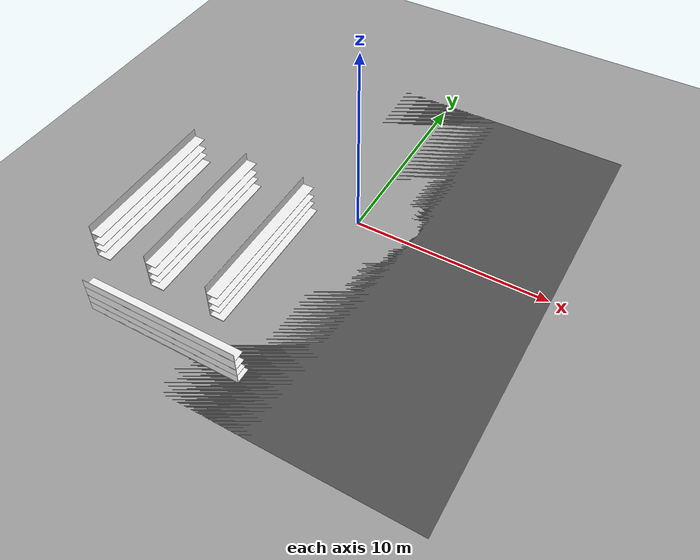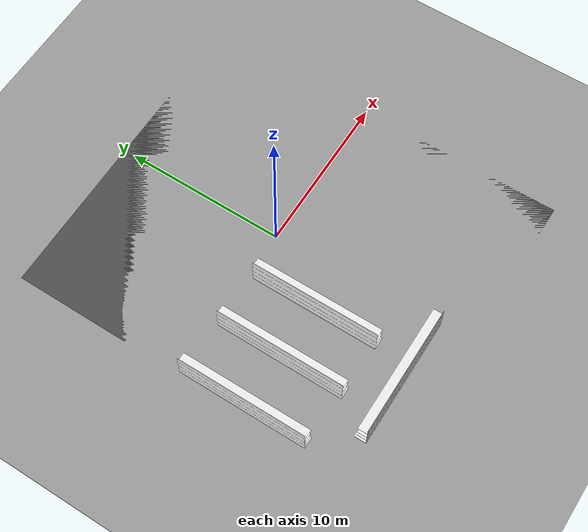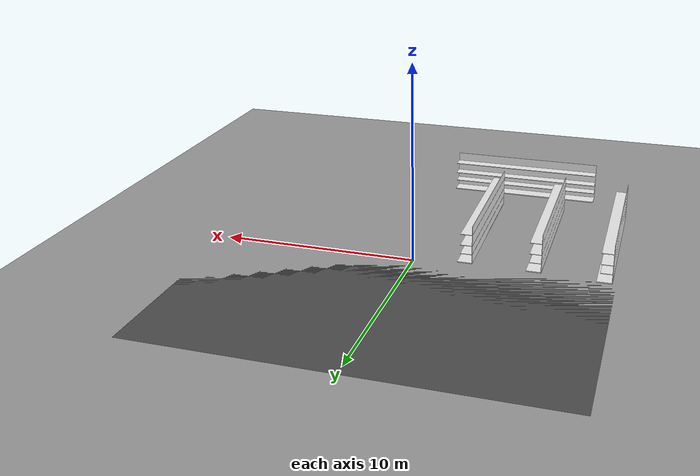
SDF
<sdf version="1.6">
 <world name="default">
  <model name="ground_plane">
   <static>1</static>
   <link name="link">
    <collision name="collision">
     <geometry><plane><normal>0 0 1</normal><size>100 100</size></plane></geometry>
     <surface>
      <contact><collide_bitmask>65535</collide_bitmask></contact>
      <friction><ode><mu>100</mu><mu2>50</mu2></ode></friction>
     </surface>
    </collision>
    <visual name="visual">
     <cast_shadows>0</cast_shadows>
     <geometry><plane><normal>0 0 1</normal><size>100 100</size></plane></geometry>
     <material>
      <script><uri>file://media/materials/scripts/gazebo.material</uri><name>Gazebo/Grey</name></script>
     </material>
    </visual>
   </link>
  </model>
  <model name="asphalt_plane">
   <static>1</static>
   <link name="link">
    <collision name="collision"><geometry><box><size>20 23.3157 0.1</size></box></geometry></collision>
    <visual name="visual">
     <cast_shadows>0</cast_shadows>
     <geometry><box><size>20 23.3157 0.1</size></box></geometry>
     <material>
      <script>
       <uri>model://asphalt_plane/materials/scripts</uri>
       <uri>model://asphalt_plane/materials/textures</uri>
       <name>vrc/asphalt</name>
      </script>
     </material>
    </visual>
   </link>
   <pose>0.082168 -0.989597 0 0 -0 0</pose>
  </model>
  <model name="ground_plane_0">
   <static>1</static>
   <link name="link">
    <collision name="collision">
     <geometry><plane><normal>0 0 1</normal><size>100 100</size></plane></geometry>
     <surface><friction><ode><mu>100</mu><mu2>50</mu2></ode></friction></surface>
    </collision>
    <visual name="visual">
     <cast_shadows>0</cast_shadows>
     <geometry><plane><normal>0 0 1</normal><size>100 100</size></plane></geometry>
     <material>
      <script><uri>file://media/materials/scripts/gazebo.material</uri><name>Gazebo/Grey</name></script>
     </material>
    </visual>
   </link>
   <pose>-0.042271 -4.04892 0 0 -0 0</pose>
  </model>
  <model name="LongShelfx4_clone_0">
   <link name="link_0">
    <inertial>
     <mass>0.38468</mass>
     <inertia>
      <ixx>0.0321196</ixx>
      <ixy>0</ixy>
      <ixz>0</ixz>
      <iyy>2.41752</iyy>
      <iyz>0</iyz>
      <izz>2.44951</izz>
     </inertia>
    </inertial>
    <pose>-4.95428 0.681381 -0.638013 0 -0 0</pose>
    <visual name="visual">
     <geometry><box><size>8 0.75 0.05</size></box></geometry>
     <material>
      <lighting>1</lighting>
      <script><uri>file://media/materials/scripts/gazebo.material</uri><name>Gazebo/White</name></script>
      <shader type="vertex"><normal_map>__default__</normal_map></shader>
      <ambient>0.3 0.3 0.3 1</ambient>
      <diffuse>0.7 0.7 0.7 1</diffuse>
      <specular>0.01 0.01 0.01 1</specular>
      <emissive>0 0 0 1</emissive>
     </material>
    </visual>
    <collision name="collision">
     <geometry><box><size>8 0.75 0.05</size></box></geometry>
     <surface>
      <friction>
       <ode><mu>1</mu><mu2>1</mu2><fdir1>0 0 0</fdir1><slip1>0</slip1><slip2>0</slip2></ode>
       <torsional>
        <coefficient>1</coefficient>
        <patch_radius>0</patch_radius>
        <surface_radius>0</surface_radius>
        <use_patch_radius>1</use_patch_radius>
        <ode><slip>0</slip></ode>
       </torsional>
      </friction>
      <bounce><restitution_coefficient>0</restitution_coefficient><threshold>1e+06</threshold></bounce>
      <contact>
       <collide_without_contact>0</collide_without_contact>
       <collide_without_contact_bitmask>1</collide_without_contact_bitmask>
       <collide_bitmask>1</collide_bitmask>
       <ode>
        <soft_cfm>0</soft_cfm>
        <soft_erp>0.2</soft_erp>
        <kp>1e+13</kp>
        <kd>1</kd>
        <max_vel>0.01</max_vel>
        <min_depth>0</min_depth>
       </ode>
       <bullet>
        <split_impulse>1</split_impulse>
        <split_impulse_penetration_threshold>-0.01</split_impulse_penetration_threshold>
        <soft_cfm>0</soft_cfm>
        <soft_erp>0.2</soft_erp>
        <kp>1e+13</kp>
        <kd>1</kd>
       </bullet>
      </contact>
     </surface>
    </collision>
   </link>
   <link name="link_1">
    <inertial>
     <mass>0.748605</mass>
     <inertia><ixx>0.445095</ixx><ixy>0</ixy><ixz>0</ixz><iyy>5.12268</iyy><iyz>0</iyz><izz>4.67771</izz></inertia>
    </inertial>
    <pose>-4.95468 0.318881 0.335328 0 -0 0</pose>
    <visual name="visual">
     <geometry><box><size>8 0.025 2</size></box></geometry>
     <material>
      <lighting>1</lighting>
      <script><uri>file://media/materials/scripts/gazebo.material</uri><name>Gazebo/White</name></script>
      <shader type="vertex"><normal_map>__default__</normal_map></shader>
      <ambient>0.3 0.3 0.3 1</ambient>
      <diffuse>0.7 0.7 0.7 1</diffuse>
      <specular>0.01 0.01 0.01 1</specular>
      <emissive>0 0 0 1</emissive>
     </material>
    </visual>
    <collision name="collision">
     <geometry><box><size>8 0.025 2</size></box></geometry>
     <surface>
      <friction>
       <ode><mu>1</mu><mu2>1</mu2><fdir1>0 0 0</fdir1><slip1>0</slip1><slip2>0</slip2></ode>
       <torsional>
        <coefficient>1</coefficient>
        <patch_radius>0</patch_radius>
        <surface_radius>0</surface_radius>
        <use_patch_radius>1</use_patch_radius>
        <ode><slip>0</slip></ode>
       </torsional>
      </friction>
      <bounce><restitution_coefficient>0</restitution_coefficient><threshold>1e+06</threshold></bounce>
      <contact>
       <collide_without_contact>0</collide_without_contact>
       <collide_without_contact_bitmask>1</collide_without_contact_bitmask>
       <collide_bitmask>1</collide_bitmask>
       <ode>
        <soft_cfm>0</soft_cfm>
        <soft_erp>0.2</soft_erp>
        <kp>1e+13</kp>
        <kd>1</kd>
        <max_vel>0.01</max_vel>
        <min_depth>0</min_depth>
       </ode>
       <bullet>
        <split_impulse>1</split_impulse>
        <split_impulse_penetration_threshold>-0.01</split_impulse_penetration_threshold>
        <soft_cfm>0</soft_cfm>
        <soft_erp>0.2</soft_erp>
        <kp>1e+13</kp>
        <kd>1</kd>
       </bullet>
      </contact>
     </surface>
    </collision>
   </link>
   <link name="link_2">
    <inertial>
     <mass>0.0597214</mass>
     <inertia>
      <ixx>0.00742007</ixx>
      <ixy>0</ixy>
      <ixz>0</ixz>
      <iyy>0.00498871</iyy>
      <iyz>0</iyz>
      <izz>0.0123849</izz>
     </inertia>
    </inertial>
    <pose>-4.95438 0.606368 0.295639 0 -0 0</pose>
    <visual name="visual">
     <geometry><box><size>8 0.6 0.025</size></box></geometry>
     <material>
      <lighting>1</lighting>
      <script><uri>file://media/materials/scripts/gazebo.material</uri><name>Gazebo/White</name></script>
      <shader type="vertex"><normal_map>__default__</normal_map></shader>
      <ambient>0.3 0.3 0.3 1</ambient>
      <diffuse>0.7 0.7 0.7 1</diffuse>
      <specular>0.01 0.01 0.01 1</specular>
      <emissive>0 0 0 1</emissive>
     </material>
    </visual>
    <collision name="collision">
     <geometry><box><size>8 0.600001 0.025</size></box></geometry>
     <surface>
      <friction>
       <ode><mu>1</mu><mu2>1</mu2><fdir1>0 0 0</fdir1><slip1>0</slip1><slip2>0</slip2></ode>
       <torsional>
        <coefficient>1</coefficient>
        <patch_radius>0</patch_radius>
        <surface_radius>0</surface_radius>
        <use_patch_radius>1</use_patch_radius>
        <ode><slip>0</slip></ode>
       </torsional>
      </friction>
      <bounce><restitution_coefficient>0</restitution_coefficient><threshold>1e+06</threshold></bounce>
      <contact>
       <collide_without_contact>0</collide_without_contact>
       <collide_without_contact_bitmask>1</collide_without_contact_bitmask>
       <collide_bitmask>1</collide_bitmask>
       <ode>
        <soft_cfm>0</soft_cfm>
        <soft_erp>0.2</soft_erp>
        <kp>1e+13</kp>
        <kd>1</kd>
        <max_vel>0.01</max_vel>
        <min_depth>0</min_depth>
       </ode>
       <bullet>
        <split_impulse>1</split_impulse>
        <split_impulse_penetration_threshold>-0.01</split_impulse_penetration_threshold>
        <soft_cfm>0</soft_cfm>
        <soft_erp>0.2</soft_erp>
        <kp>1e+13</kp>
        <kd>1</kd>
       </bullet>
      </contact>
     </surface>
    </collision>
   </link>
   <link name="link_2_clone">
    <inertial>
     <mass>0.0597214</mass>
     <inertia>
      <ixx>0.00742007</ixx>
      <ixy>0</ixy>
      <ixz>0</ixz>
      <iyy>0.00498871</iyy>
      <iyz>0</iyz>
      <izz>0.0123849</izz>
     </inertia>
    </inertial>
    <pose>-4.95438 0.606361 0.871858 0 -0 0</pose>
    <visual name="visual">
     <geometry><box><size>8 0.6 0.025</size></box></geometry>
     <material>
      <lighting>1</lighting>
      <script><uri>file://media/materials/scripts/gazebo.material</uri><name>Gazebo/White</name></script>
      <shader type="vertex"><normal_map>__default__</normal_map></shader>
      <ambient>0.3 0.3 0.3 1</ambient>
      <diffuse>0.7 0.7 0.7 1</diffuse>
      <specular>0.01 0.01 0.01 1</specular>
      <emissive>0 0 0 1</emissive>
     </material>
    </visual>
    <collision name="collision">
     <geometry><box><size>8 0.600001 0.025</size></box></geometry>
     <surface>
      <friction>
       <ode><mu>1</mu><mu2>1</mu2><fdir1>0 0 0</fdir1><slip1>0</slip1><slip2>0</slip2></ode>
       <torsional>
        <coefficient>1</coefficient>
        <patch_radius>0</patch_radius>
        <surface_radius>0</surface_radius>
        <use_patch_radius>1</use_patch_radius>
        <ode><slip>0</slip></ode>
       </torsional>
      </friction>
      <bounce><restitution_coefficient>0</restitution_coefficient><threshold>1e+06</threshold></bounce>
      <contact>
       <collide_without_contact>0</collide_without_contact>
       <collide_without_contact_bitmask>1</collide_without_contact_bitmask>
       <collide_bitmask>1</collide_bitmask>
       <ode>
        <soft_cfm>0</soft_cfm>
        <soft_erp>0.2</soft_erp>
        <kp>1e+13</kp>
        <kd>1</kd>
        <max_vel>0.01</max_vel>
        <min_depth>0</min_depth>
       </ode>
       <bullet>
        <split_impulse>1</split_impulse>
        <split_impulse_penetration_threshold>-0.01</split_impulse_penetration_threshold>
        <soft_cfm>0</soft_cfm>
        <soft_erp>0.2</soft_erp>
        <kp>1e+13</kp>
        <kd>1</kd>
       </bullet>
      </contact>
     </surface>
    </collision>
   </link>
   <link name="link_2_clone_0">
    <inertial>
     <mass>0.0597214</mass>
     <inertia>
      <ixx>0.00742007</ixx>
      <ixy>0</ixy>
      <ixz>0</ixz>
      <iyy>0.00498871</iyy>
      <iyz>0</iyz>
      <izz>0.0123849</izz>
     </inertia>
    </inertial>
    <pose>-4.95438 0.606375 -0.163574 0 -0 0</pose>
    <visual name="visual">
     <geometry><box><size>8 0.6 0.025</size></box></geometry>
     <material>
      <lighting>1</lighting>
      <script><uri>file://media/materials/scripts/gazebo.material</uri><name>Gazebo/White</name></script>
      <shader type="vertex"><normal_map>__default__</normal_map></shader>
      <ambient>0.3 0.3 0.3 1</ambient>
      <diffuse>0.7 0.7 0.7 1</diffuse>
      <specular>0.01 0.01 0.01 1</specular>
      <emissive>0 0 0 1</emissive>
     </material>
    </visual>
    <collision name="collision">
     <geometry><box><size>8 0.600001 0.025</size></box></geometry>
     <surface>
      <friction>
       <ode><mu>1</mu><mu2>1</mu2><fdir1>0 0 0</fdir1><slip1>0</slip1><slip2>0</slip2></ode>
       <torsional>
        <coefficient>1</coefficient>
        <patch_radius>0</patch_radius>
        <surface_radius>0</surface_radius>
        <use_patch_radius>1</use_patch_radius>
        <ode><slip>0</slip></ode>
       </torsional>
      </friction>
      <bounce><restitution_coefficient>0</restitution_coefficient><threshold>1e+06</threshold></bounce>
      <contact>
       <collide_without_contact>0</collide_without_contact>
       <collide_without_contact_bitmask>1</collide_without_contact_bitmask>
       <collide_bitmask>1</collide_bitmask>
       <ode>
        <soft_cfm>0</soft_cfm>
        <soft_erp>0.2</soft_erp>
        <kp>1e+13</kp>
        <kd>1</kd>
        <max_vel>0.01</max_vel>
        <min_depth>0</min_depth>
       </ode>
       <bullet>
        <split_impulse>1</split_impulse>
        <split_impulse_penetration_threshold>-0.01</split_impulse_penetration_threshold>
        <soft_cfm>0</soft_cfm>
        <soft_erp>0.2</soft_erp>
        <kp>1e+13</kp>
        <kd>1</kd>
       </bullet>
      </contact>
     </surface>
    </collision>
   </link>
   <joint name="link_1_JOINT_4" type="fixed">
    <parent>link_1</parent>
    <child>link_0</child>
    <physics>
     <ode><limit><cfm>0</cfm><erp>0.2</erp></limit><suspension><cfm>0</cfm><erp>0.2</erp></suspension></ode>
    </physics>
   </joint>
   <joint name="link_1_JOINT_5" type="fixed">
    <parent>link_1</parent>
    <child>link_2_clone_0</child>
    <physics>
     <ode><limit><cfm>0</cfm><erp>0.2</erp></limit><suspension><cfm>0</cfm><erp>0.2</erp></suspension></ode>
    </physics>
   </joint>
   <joint name="link_1_JOINT_6" type="fixed">
    <parent>link_1</parent>
    <child>link_2</child>
    <physics>
     <ode><limit><cfm>0</cfm><erp>0.2</erp></limit><suspension><cfm>0</cfm><erp>0.2</erp></suspension></ode>
    </physics>
   </joint>
   <joint name="link_1_JOINT_7" type="fixed">
    <parent>link_1</parent>
    <child>link_2_clone</child>
    <physics>
     <ode><limit><cfm>0</cfm><erp>0.2</erp></limit><suspension><cfm>0</cfm><erp>0.2</erp></suspension></ode>
    </physics>
   </joint>
   <static>0</static>
   <pose>-10.0293 -9.03175 0.715429 -0.002288 -0 -1.56844</pose>
  </model>
  <model name="LongShelfx4_clone_0_clone_clone">
   <link name="link_0">
    <inertial>
     <mass>0.38468</mass>
     <inertia>
      <ixx>0.0321196</ixx>
      <ixy>0</ixy>
      <ixz>0</ixz>
      <iyy>2.41752</iyy>
      <iyz>0</iyz>
      <izz>2.44951</izz>
     </inertia>
    </inertial>
    <pose>-4.95428 0.681381 -0.638013 0 -0 0</pose>
    <visual name="visual">
     <geometry><box><size>8 0.75 0.05</size></box></geometry>
     <material>
      <lighting>1</lighting>
      <script><uri>file://media/materials/scripts/gazebo.material</uri><name>Gazebo/White</name></script>
      <shader type="vertex"><normal_map>__default__</normal_map></shader>
      <ambient>0.3 0.3 0.3 1</ambient>
      <diffuse>0.7 0.7 0.7 1</diffuse>
      <specular>0.01 0.01 0.01 1</specular>
      <emissive>0 0 0 1</emissive>
     </material>
    </visual>
    <collision name="collision">
     <geometry><box><size>8 0.75 0.05</size></box></geometry>
     <surface>
      <friction>
       <ode><mu>1</mu><mu2>1</mu2><fdir1>0 0 0</fdir1><slip1>0</slip1><slip2>0</slip2></ode>
       <torsional>
        <coefficient>1</coefficient>
        <patch_radius>0</patch_radius>
        <surface_radius>0</surface_radius>
        <use_patch_radius>1</use_patch_radius>
        <ode><slip>0</slip></ode>
       </torsional>
      </friction>
      <bounce><restitution_coefficient>0</restitution_coefficient><threshold>1e+06</threshold></bounce>
      <contact>
       <collide_without_contact>0</collide_without_contact>
       <collide_without_contact_bitmask>1</collide_without_contact_bitmask>
       <collide_bitmask>1</collide_bitmask>
       <ode>
        <soft_cfm>0</soft_cfm>
        <soft_erp>0.2</soft_erp>
        <kp>1e+13</kp>
        <kd>1</kd>
        <max_vel>0.01</max_vel>
        <min_depth>0</min_depth>
       </ode>
       <bullet>
        <split_impulse>1</split_impulse>
        <split_impulse_penetration_threshold>-0.01</split_impulse_penetration_threshold>
        <soft_cfm>0</soft_cfm>
        <soft_erp>0.2</soft_erp>
        <kp>1e+13</kp>
        <kd>1</kd>
       </bullet>
      </contact>
     </surface>
    </collision>
   </link>
   <link name="link_1">
    <inertial>
     <mass>0.748605</mass>
     <inertia><ixx>0.445095</ixx><ixy>0</ixy><ixz>0</ixz><iyy>5.12268</iyy><iyz>0</iyz><izz>4.67771</izz></inertia>
    </inertial>
    <pose>-4.95468 0.318881 0.335328 0 -0 0</pose>
    <visual name="visual">
     <geometry><box><size>8 0.025 2</size></box></geometry>
     <material>
      <lighting>1</lighting>
      <script><uri>file://media/materials/scripts/gazebo.material</uri><name>Gazebo/White</name></script>
      <shader type="vertex"><normal_map>__default__</normal_map></shader>
      <ambient>0.3 0.3 0.3 1</ambient>
      <diffuse>0.7 0.7 0.7 1</diffuse>
      <specular>0.01 0.01 0.01 1</specular>
      <emissive>0 0 0 1</emissive>
     </material>
    </visual>
    <collision name="collision">
     <geometry><box><size>8 0.025 2</size></box></geometry>
     <surface>
      <friction>
       <ode><mu>1</mu><mu2>1</mu2><fdir1>0 0 0</fdir1><slip1>0</slip1><slip2>0</slip2></ode>
       <torsional>
        <coefficient>1</coefficient>
        <patch_radius>0</patch_radius>
        <surface_radius>0</surface_radius>
        <use_patch_radius>1</use_patch_radius>
        <ode><slip>0</slip></ode>
       </torsional>
      </friction>
      <bounce><restitution_coefficient>0</restitution_coefficient><threshold>1e+06</threshold></bounce>
      <contact>
       <collide_without_contact>0</collide_without_contact>
       <collide_without_contact_bitmask>1</collide_without_contact_bitmask>
       <collide_bitmask>1</collide_bitmask>
       <ode>
        <soft_cfm>0</soft_cfm>
        <soft_erp>0.2</soft_erp>
        <kp>1e+13</kp>
        <kd>1</kd>
        <max_vel>0.01</max_vel>
        <min_depth>0</min_depth>
       </ode>
       <bullet>
        <split_impulse>1</split_impulse>
        <split_impulse_penetration_threshold>-0.01</split_impulse_penetration_threshold>
        <soft_cfm>0</soft_cfm>
        <soft_erp>0.2</soft_erp>
        <kp>1e+13</kp>
        <kd>1</kd>
       </bullet>
      </contact>
     </surface>
    </collision>
   </link>
   <link name="link_2">
    <inertial>
     <mass>0.0597214</mass>
     <inertia>
      <ixx>0.00742007</ixx>
      <ixy>0</ixy>
      <ixz>0</ixz>
      <iyy>0.00498871</iyy>
      <iyz>0</iyz>
      <izz>0.0123849</izz>
     </inertia>
    </inertial>
    <pose>-4.95438 0.606368 0.295639 0 -0 0</pose>
    <visual name="visual">
     <geometry><box><size>8 0.6 0.025</size></box></geometry>
     <material>
      <lighting>1</lighting>
      <script><uri>file://media/materials/scripts/gazebo.material</uri><name>Gazebo/White</name></script>
      <shader type="vertex"><normal_map>__default__</normal_map></shader>
      <ambient>0.3 0.3 0.3 1</ambient>
      <diffuse>0.7 0.7 0.7 1</diffuse>
      <specular>0.01 0.01 0.01 1</specular>
      <emissive>0 0 0 1</emissive>
     </material>
    </visual>
    <collision name="collision">
     <geometry><box><size>8 0.600001 0.025</size></box></geometry>
     <surface>
      <friction>
       <ode><mu>1</mu><mu2>1</mu2><fdir1>0 0 0</fdir1><slip1>0</slip1><slip2>0</slip2></ode>
       <torsional>
        <coefficient>1</coefficient>
        <patch_radius>0</patch_radius>
        <surface_radius>0</surface_radius>
        <use_patch_radius>1</use_patch_radius>
        <ode><slip>0</slip></ode>
       </torsional>
      </friction>
      <bounce><restitution_coefficient>0</restitution_coefficient><threshold>1e+06</threshold></bounce>
      <contact>
       <collide_without_contact>0</collide_without_contact>
       <collide_without_contact_bitmask>1</collide_without_contact_bitmask>
       <collide_bitmask>1</collide_bitmask>
       <ode>
        <soft_cfm>0</soft_cfm>
        <soft_erp>0.2</soft_erp>
        <kp>1e+13</kp>
        <kd>1</kd>
        <max_vel>0.01</max_vel>
        <min_depth>0</min_depth>
       </ode>
       <bullet>
        <split_impulse>1</split_impulse>
        <split_impulse_penetration_threshold>-0.01</split_impulse_penetration_threshold>
        <soft_cfm>0</soft_cfm>
        <soft_erp>0.2</soft_erp>
        <kp>1e+13</kp>
        <kd>1</kd>
       </bullet>
      </contact>
     </surface>
    </collision>
   </link>
   <link name="link_2_clone">
    <inertial>
     <mass>0.0597214</mass>
     <inertia>
      <ixx>0.00742007</ixx>
      <ixy>0</ixy>
      <ixz>0</ixz>
      <iyy>0.00498871</iyy>
      <iyz>0</iyz>
      <izz>0.0123849</izz>
     </inertia>
    </inertial>
    <pose>-4.95438 0.606361 0.871858 0 -0 0</pose>
    <visual name="visual">
     <geometry><box><size>8 0.6 0.025</size></box></geometry>
     <material>
      <lighting>1</lighting>
      <script><uri>file://media/materials/scripts/gazebo.material</uri><name>Gazebo/White</name></script>
      <shader type="vertex"><normal_map>__default__</normal_map></shader>
      <ambient>0.3 0.3 0.3 1</ambient>
      <diffuse>0.7 0.7 0.7 1</diffuse>
      <specular>0.01 0.01 0.01 1</specular>
      <emissive>0 0 0 1</emissive>
     </material>
    </visual>
    <collision name="collision">
     <geometry><box><size>8 0.600001 0.025</size></box></geometry>
     <surface>
      <friction>
       <ode><mu>1</mu><mu2>1</mu2><fdir1>0 0 0</fdir1><slip1>0</slip1><slip2>0</slip2></ode>
       <torsional>
        <coefficient>1</coefficient>
        <patch_radius>0</patch_radius>
        <surface_radius>0</surface_radius>
        <use_patch_radius>1</use_patch_radius>
        <ode><slip>0</slip></ode>
       </torsional>
      </friction>
      <bounce><restitution_coefficient>0</restitution_coefficient><threshold>1e+06</threshold></bounce>
      <contact>
       <collide_without_contact>0</collide_without_contact>
       <collide_without_contact_bitmask>1</collide_without_contact_bitmask>
       <collide_bitmask>1</collide_bitmask>
       <ode>
        <soft_cfm>0</soft_cfm>
        <soft_erp>0.2</soft_erp>
        <kp>1e+13</kp>
        <kd>1</kd>
        <max_vel>0.01</max_vel>
        <min_depth>0</min_depth>
       </ode>
       <bullet>
        <split_impulse>1</split_impulse>
        <split_impulse_penetration_threshold>-0.01</split_impulse_penetration_threshold>
        <soft_cfm>0</soft_cfm>
        <soft_erp>0.2</soft_erp>
        <kp>1e+13</kp>
        <kd>1</kd>
       </bullet>
      </contact>
     </surface>
    </collision>
   </link>
   <link name="link_2_clone_0">
    <inertial>
     <mass>0.0597214</mass>
     <inertia>
      <ixx>0.00742007</ixx>
      <ixy>0</ixy>
      <ixz>0</ixz>
      <iyy>0.00498871</iyy>
      <iyz>0</iyz>
      <izz>0.0123849</izz>
     </inertia>
    </inertial>
    <pose>-4.95438 0.606375 -0.163574 0 -0 0</pose>
    <visual name="visual">
     <geometry><box><size>8 0.6 0.025</size></box></geometry>
     <material>
      <lighting>1</lighting>
      <script><uri>file://media/materials/scripts/gazebo.material</uri><name>Gazebo/White</name></script>
      <shader type="vertex"><normal_map>__default__</normal_map></shader>
      <ambient>0.3 0.3 0.3 1</ambient>
      <diffuse>0.7 0.7 0.7 1</diffuse>
      <specular>0.01 0.01 0.01 1</specular>
      <emissive>0 0 0 1</emissive>
     </material>
    </visual>
    <collision name="collision">
     <geometry><box><size>8 0.600001 0.025</size></box></geometry>
     <surface>
      <friction>
       <ode><mu>1</mu><mu2>1</mu2><fdir1>0 0 0</fdir1><slip1>0</slip1><slip2>0</slip2></ode>
       <torsional>
        <coefficient>1</coefficient>
        <patch_radius>0</patch_radius>
        <surface_radius>0</surface_radius>
        <use_patch_radius>1</use_patch_radius>
        <ode><slip>0</slip></ode>
       </torsional>
      </friction>
      <bounce><restitution_coefficient>0</restitution_coefficient><threshold>1e+06</threshold></bounce>
      <contact>
       <collide_without_contact>0</collide_without_contact>
       <collide_without_contact_bitmask>1</collide_without_contact_bitmask>
       <collide_bitmask>1</collide_bitmask>
       <ode>
        <soft_cfm>0</soft_cfm>
        <soft_erp>0.2</soft_erp>
        <kp>1e+13</kp>
        <kd>1</kd>
        <max_vel>0.01</max_vel>
        <min_depth>0</min_depth>
       </ode>
       <bullet>
        <split_impulse>1</split_impulse>
        <split_impulse_penetration_threshold>-0.01</split_impulse_penetration_threshold>
        <soft_cfm>0</soft_cfm>
        <soft_erp>0.2</soft_erp>
        <kp>1e+13</kp>
        <kd>1</kd>
       </bullet>
      </contact>
     </surface>
    </collision>
   </link>
   <joint name="link_1_JOINT_4" type="fixed">
    <parent>link_1</parent>
    <child>link_0</child>
    <physics>
     <ode><limit><cfm>0</cfm><erp>0.2</erp></limit><suspension><cfm>0</cfm><erp>0.2</erp></suspension></ode>
    </physics>
   </joint>
   <joint name="link_1_JOINT_5" type="fixed">
    <parent>link_1</parent>
    <child>link_2_clone_0</child>
    <physics>
     <ode><limit><cfm>0</cfm><erp>0.2</erp></limit><suspension><cfm>0</cfm><erp>0.2</erp></suspension></ode>
    </physics>
   </joint>
   <joint name="link_1_JOINT_6" type="fixed">
    <parent>link_1</parent>
    <child>link_2</child>
    <physics>
     <ode><limit><cfm>0</cfm><erp>0.2</erp></limit><suspension><cfm>0</cfm><erp>0.2</erp></suspension></ode>
    </physics>
   </joint>
   <joint name="link_1_JOINT_7" type="fixed">
    <parent>link_1</parent>
    <child>link_2_clone</child>
    <physics>
     <ode><limit><cfm>0</cfm><erp>0.2</erp></limit><suspension><cfm>0</cfm><erp>0.2</erp></suspension></ode>
    </physics>
   </joint>
   <static>0</static>
   <pose>-6.65102 -9.23059 0.715417 -0.002288 1e-06 -1.57046</pose>
  </model>
  <model name="LongShelfx4_clone_0_clone_clone_0">
   <link name="link_0">
    <inertial>
     <mass>0.38468</mass>
     <inertia>
      <ixx>0.0321196</ixx>
      <ixy>0</ixy>
      <ixz>0</ixz>
      <iyy>2.41752</iyy>
      <iyz>0</iyz>
      <izz>2.44951</izz>
     </inertia>
    </inertial>
    <pose>-4.95428 0.681381 -0.638013 0 -0 0</pose>
    <visual name="visual">
     <geometry><box><size>8 0.75 0.05</size></box></geometry>
     <material>
      <lighting>1</lighting>
      <script><uri>file://media/materials/scripts/gazebo.material</uri><name>Gazebo/White</name></script>
      <shader type="vertex"><normal_map>__default__</normal_map></shader>
      <ambient>0.3 0.3 0.3 1</ambient>
      <diffuse>0.7 0.7 0.7 1</diffuse>
      <specular>0.01 0.01 0.01 1</specular>
      <emissive>0 0 0 1</emissive>
     </material>
    </visual>
    <collision name="collision">
     <geometry><box><size>8 0.75 0.05</size></box></geometry>
     <surface>
      <friction>
       <ode><mu>1</mu><mu2>1</mu2><fdir1>0 0 0</fdir1><slip1>0</slip1><slip2>0</slip2></ode>
       <torsional>
        <coefficient>1</coefficient>
        <patch_radius>0</patch_radius>
        <surface_radius>0</surface_radius>
        <use_patch_radius>1</use_patch_radius>
        <ode><slip>0</slip></ode>
       </torsional>
      </friction>
      <bounce><restitution_coefficient>0</restitution_coefficient><threshold>1e+06</threshold></bounce>
      <contact>
       <collide_without_contact>0</collide_without_contact>
       <collide_without_contact_bitmask>1</collide_without_contact_bitmask>
       <collide_bitmask>1</collide_bitmask>
       <ode>
        <soft_cfm>0</soft_cfm>
        <soft_erp>0.2</soft_erp>
        <kp>1e+13</kp>
        <kd>1</kd>
        <max_vel>0.01</max_vel>
        <min_depth>0</min_depth>
       </ode>
       <bullet>
        <split_impulse>1</split_impulse>
        <split_impulse_penetration_threshold>-0.01</split_impulse_penetration_threshold>
        <soft_cfm>0</soft_cfm>
        <soft_erp>0.2</soft_erp>
        <kp>1e+13</kp>
        <kd>1</kd>
       </bullet>
      </contact>
     </surface>
    </collision>
   </link>
   <link name="link_1">
    <inertial>
     <mass>0.748605</mass>
     <inertia><ixx>0.445095</ixx><ixy>0</ixy><ixz>0</ixz><iyy>5.12268</iyy><iyz>0</iyz><izz>4.67771</izz></inertia>
    </inertial>
    <pose>-4.95468 0.318881 0.335328 0 -0 0</pose>
    <visual name="visual">
     <geometry><box><size>8 0.025 2</size></box></geometry>
     <material>
      <lighting>1</lighting>
      <script><uri>file://media/materials/scripts/gazebo.material</uri><name>Gazebo/White</name></script>
      <shader type="vertex"><normal_map>__default__</normal_map></shader>
      <ambient>0.3 0.3 0.3 1</ambient>
      <diffuse>0.7 0.7 0.7 1</diffuse>
      <specular>0.01 0.01 0.01 1</specular>
      <emissive>0 0 0 1</emissive>
     </material>
    </visual>
    <collision name="collision">
     <geometry><box><size>8 0.025 2</size></box></geometry>
     <surface>
      <friction>
       <ode><mu>1</mu><mu2>1</mu2><fdir1>0 0 0</fdir1><slip1>0</slip1><slip2>0</slip2></ode>
       <torsional>
        <coefficient>1</coefficient>
        <patch_radius>0</patch_radius>
        <surface_radius>0</surface_radius>
        <use_patch_radius>1</use_patch_radius>
        <ode><slip>0</slip></ode>
       </torsional>
      </friction>
      <bounce><restitution_coefficient>0</restitution_coefficient><threshold>1e+06</threshold></bounce>
      <contact>
       <collide_without_contact>0</collide_without_contact>
       <collide_without_contact_bitmask>1</collide_without_contact_bitmask>
       <collide_bitmask>1</collide_bitmask>
       <ode>
        <soft_cfm>0</soft_cfm>
        <soft_erp>0.2</soft_erp>
        <kp>1e+13</kp>
        <kd>1</kd>
        <max_vel>0.01</max_vel>
        <min_depth>0</min_depth>
       </ode>
       <bullet>
        <split_impulse>1</split_impulse>
        <split_impulse_penetration_threshold>-0.01</split_impulse_penetration_threshold>
        <soft_cfm>0</soft_cfm>
        <soft_erp>0.2</soft_erp>
        <kp>1e+13</kp>
        <kd>1</kd>
       </bullet>
      </contact>
     </surface>
    </collision>
   </link>
   <link name="link_2">
    <inertial>
     <mass>0.0597214</mass>
     <inertia>
      <ixx>0.00742007</ixx>
      <ixy>0</ixy>
      <ixz>0</ixz>
      <iyy>0.00498871</iyy>
      <iyz>0</iyz>
      <izz>0.0123849</izz>
     </inertia>
    </inertial>
    <pose>-4.95438 0.606368 0.295639 0 -0 0</pose>
    <visual name="visual">
     <geometry><box><size>8 0.6 0.025</size></box></geometry>
     <material>
      <lighting>1</lighting>
      <script><uri>file://media/materials/scripts/gazebo.material</uri><name>Gazebo/White</name></script>
      <shader type="vertex"><normal_map>__default__</normal_map></shader>
      <ambient>0.3 0.3 0.3 1</ambient>
      <diffuse>0.7 0.7 0.7 1</diffuse>
      <specular>0.01 0.01 0.01 1</specular>
      <emissive>0 0 0 1</emissive>
     </material>
    </visual>
    <collision name="collision">
     <geometry><box><size>8 0.600001 0.025</size></box></geometry>
     <surface>
      <friction>
       <ode><mu>1</mu><mu2>1</mu2><fdir1>0 0 0</fdir1><slip1>0</slip1><slip2>0</slip2></ode>
       <torsional>
        <coefficient>1</coefficient>
        <patch_radius>0</patch_radius>
        <surface_radius>0</surface_radius>
        <use_patch_radius>1</use_patch_radius>
        <ode><slip>0</slip></ode>
       </torsional>
      </friction>
      <bounce><restitution_coefficient>0</restitution_coefficient><threshold>1e+06</threshold></bounce>
      <contact>
       <collide_without_contact>0</collide_without_contact>
       <collide_without_contact_bitmask>1</collide_without_contact_bitmask>
       <collide_bitmask>1</collide_bitmask>
       <ode>
        <soft_cfm>0</soft_cfm>
        <soft_erp>0.2</soft_erp>
        <kp>1e+13</kp>
        <kd>1</kd>
        <max_vel>0.01</max_vel>
        <min_depth>0</min_depth>
       </ode>
       <bullet>
        <split_impulse>1</split_impulse>
        <split_impulse_penetration_threshold>-0.01</split_impulse_penetration_threshold>
        <soft_cfm>0</soft_cfm>
        <soft_erp>0.2</soft_erp>
        <kp>1e+13</kp>
        <kd>1</kd>
       </bullet>
      </contact>
     </surface>
    </collision>
   </link>
   <link name="link_2_clone">
    <inertial>
     <mass>0.0597214</mass>
     <inertia>
      <ixx>0.00742007</ixx>
      <ixy>0</ixy>
      <ixz>0</ixz>
      <iyy>0.00498871</iyy>
      <iyz>0</iyz>
      <izz>0.0123849</izz>
     </inertia>
    </inertial>
    <pose>-4.95438 0.606361 0.871858 0 -0 0</pose>
    <visual name="visual">
     <geometry><box><size>8 0.6 0.025</size></box></geometry>
     <material>
      <lighting>1</lighting>
      <script><uri>file://media/materials/scripts/gazebo.material</uri><name>Gazebo/White</name></script>
      <shader type="vertex"><normal_map>__default__</normal_map></shader>
      <ambient>0.3 0.3 0.3 1</ambient>
      <diffuse>0.7 0.7 0.7 1</diffuse>
      <specular>0.01 0.01 0.01 1</specular>
      <emissive>0 0 0 1</emissive>
     </material>
    </visual>
    <collision name="collision">
     <geometry><box><size>8 0.600001 0.025</size></box></geometry>
     <surface>
      <friction>
       <ode><mu>1</mu><mu2>1</mu2><fdir1>0 0 0</fdir1><slip1>0</slip1><slip2>0</slip2></ode>
       <torsional>
        <coefficient>1</coefficient>
        <patch_radius>0</patch_radius>
        <surface_radius>0</surface_radius>
        <use_patch_radius>1</use_patch_radius>
        <ode><slip>0</slip></ode>
       </torsional>
      </friction>
      <bounce><restitution_coefficient>0</restitution_coefficient><threshold>1e+06</threshold></bounce>
      <contact>
       <collide_without_contact>0</collide_without_contact>
       <collide_without_contact_bitmask>1</collide_without_contact_bitmask>
       <collide_bitmask>1</collide_bitmask>
       <ode>
        <soft_cfm>0</soft_cfm>
        <soft_erp>0.2</soft_erp>
        <kp>1e+13</kp>
        <kd>1</kd>
        <max_vel>0.01</max_vel>
        <min_depth>0</min_depth>
       </ode>
       <bullet>
        <split_impulse>1</split_impulse>
        <split_impulse_penetration_threshold>-0.01</split_impulse_penetration_threshold>
        <soft_cfm>0</soft_cfm>
        <soft_erp>0.2</soft_erp>
        <kp>1e+13</kp>
        <kd>1</kd>
       </bullet>
      </contact>
     </surface>
    </collision>
   </link>
   <link name="link_2_clone_0">
    <inertial>
     <mass>0.0597214</mass>
     <inertia>
      <ixx>0.00742007</ixx>
      <ixy>0</ixy>
      <ixz>0</ixz>
      <iyy>0.00498871</iyy>
      <iyz>0</iyz>
      <izz>0.0123849</izz>
     </inertia>
    </inertial>
    <pose>-4.95438 0.606375 -0.163574 0 -0 0</pose>
    <visual name="visual">
     <geometry><box><size>8 0.6 0.025</size></box></geometry>
     <material>
      <lighting>1</lighting>
      <script><uri>file://media/materials/scripts/gazebo.material</uri><name>Gazebo/White</name></script>
      <shader type="vertex"><normal_map>__default__</normal_map></shader>
      <ambient>0.3 0.3 0.3 1</ambient>
      <diffuse>0.7 0.7 0.7 1</diffuse>
      <specular>0.01 0.01 0.01 1</specular>
      <emissive>0 0 0 1</emissive>
     </material>
    </visual>
    <collision name="collision">
     <geometry><box><size>8 0.600001 0.025</size></box></geometry>
     <surface>
      <friction>
       <ode><mu>1</mu><mu2>1</mu2><fdir1>0 0 0</fdir1><slip1>0</slip1><slip2>0</slip2></ode>
       <torsional>
        <coefficient>1</coefficient>
        <patch_radius>0</patch_radius>
        <surface_radius>0</surface_radius>
        <use_patch_radius>1</use_patch_radius>
        <ode><slip>0</slip></ode>
       </torsional>
      </friction>
      <bounce><restitution_coefficient>0</restitution_coefficient><threshold>1e+06</threshold></bounce>
      <contact>
       <collide_without_contact>0</collide_without_contact>
       <collide_without_contact_bitmask>1</collide_without_contact_bitmask>
       <collide_bitmask>1</collide_bitmask>
       <ode>
        <soft_cfm>0</soft_cfm>
        <soft_erp>0.2</soft_erp>
        <kp>1e+13</kp>
        <kd>1</kd>
        <max_vel>0.01</max_vel>
        <min_depth>0</min_depth>
       </ode>
       <bullet>
        <split_impulse>1</split_impulse>
        <split_impulse_penetration_threshold>-0.01</split_impulse_penetration_threshold>
        <soft_cfm>0</soft_cfm>
        <soft_erp>0.2</soft_erp>
        <kp>1e+13</kp>
        <kd>1</kd>
       </bullet>
      </contact>
     </surface>
    </collision>
   </link>
   <joint name="link_1_JOINT_4" type="fixed">
    <parent>link_1</parent>
    <child>link_0</child>
    <physics>
     <ode><limit><cfm>0</cfm><erp>0.2</erp></limit><suspension><cfm>0</cfm><erp>0.2</erp></suspension></ode>
    </physics>
   </joint>
   <joint name="link_1_JOINT_5" type="fixed">
    <parent>link_1</parent>
    <child>link_2_clone_0</child>
    <physics>
     <ode><limit><cfm>0</cfm><erp>0.2</erp></limit><suspension><cfm>0</cfm><erp>0.2</erp></suspension></ode>
    </physics>
   </joint>
   <joint name="link_1_JOINT_6" type="fixed">
    <parent>link_1</parent>
    <child>link_2</child>
    <physics>
     <ode><limit><cfm>0</cfm><erp>0.2</erp></limit><suspension><cfm>0</cfm><erp>0.2</erp></suspension></ode>
    </physics>
   </joint>
   <joint name="link_1_JOINT_7" type="fixed">
    <parent>link_1</parent>
    <child>link_2_clone</child>
    <physics>
     <ode><limit><cfm>0</cfm><erp>0.2</erp></limit><suspension><cfm>0</cfm><erp>0.2</erp></suspension></ode>
    </physics>
   </joint>
   <static>0</static>
   <pose>-3.21582 -9.2931 0.715428 -0.002288 -0 -1.56937</pose>
  </model>
  <model name="LongShelfx4_clone_1">
   <link name="link_0">
    <inertial>
     <mass>0.38468</mass>
     <inertia>
      <ixx>0.0321196</ixx>
      <ixy>0</ixy>
      <ixz>0</ixz>
      <iyy>2.41752</iyy>
      <iyz>0</iyz>
      <izz>2.44951</izz>
     </inertia>
    </inertial>
    <pose>-4.95428 0.681381 -0.638013 0 -0 0</pose>
    <visual name="visual">
     <geometry><box><size>8 0.75 0.05</size></box></geometry>
     <material>
      <lighting>1</lighting>
      <script><uri>file://media/materials/scripts/gazebo.material</uri><name>Gazebo/White</name></script>
      <shader type="vertex"><normal_map>__default__</normal_map></shader>
      <ambient>0.3 0.3 0.3 1</ambient>
      <diffuse>0.7 0.7 0.7 1</diffuse>
      <specular>0.01 0.01 0.01 1</specular>
      <emissive>0 0 0 1</emissive>
     </material>
    </visual>
    <collision name="collision">
     <geometry><box><size>8 0.75 0.05</size></box></geometry>
     <surface>
      <friction>
       <ode><mu>1</mu><mu2>1</mu2><fdir1>0 0 0</fdir1><slip1>0</slip1><slip2>0</slip2></ode>
       <torsional>
        <coefficient>1</coefficient>
        <patch_radius>0</patch_radius>
        <surface_radius>0</surface_radius>
        <use_patch_radius>1</use_patch_radius>
        <ode><slip>0</slip></ode>
       </torsional>
      </friction>
      <bounce><restitution_coefficient>0</restitution_coefficient><threshold>1e+06</threshold></bounce>
      <contact>
       <collide_without_contact>0</collide_without_contact>
       <collide_without_contact_bitmask>1</collide_without_contact_bitmask>
       <collide_bitmask>1</collide_bitmask>
       <ode>
        <soft_cfm>0</soft_cfm>
        <soft_erp>0.2</soft_erp>
        <kp>1e+13</kp>
        <kd>1</kd>
        <max_vel>0.01</max_vel>
        <min_depth>0</min_depth>
       </ode>
       <bullet>
        <split_impulse>1</split_impulse>
        <split_impulse_penetration_threshold>-0.01</split_impulse_penetration_threshold>
        <soft_cfm>0</soft_cfm>
        <soft_erp>0.2</soft_erp>
        <kp>1e+13</kp>
        <kd>1</kd>
       </bullet>
      </contact>
     </surface>
    </collision>
   </link>
   <link name="link_1">
    <inertial>
     <mass>0.748605</mass>
     <inertia><ixx>0.445095</ixx><ixy>0</ixy><ixz>0</ixz><iyy>5.12268</iyy><iyz>0</iyz><izz>4.67771</izz></inertia>
    </inertial>
    <pose>-4.95468 0.318881 0.335328 0 -0 0</pose>
    <visual name="visual">
     <geometry><box><size>8 0.025 2</size></box></geometry>
     <material>
      <lighting>1</lighting>
      <script><uri>file://media/materials/scripts/gazebo.material</uri><name>Gazebo/White</name></script>
      <shader type="vertex"><normal_map>__default__</normal_map></shader>
      <ambient>0.3 0.3 0.3 1</ambient>
      <diffuse>0.7 0.7 0.7 1</diffuse>
      <specular>0.01 0.01 0.01 1</specular>
      <emissive>0 0 0 1</emissive>
     </material>
    </visual>
    <collision name="collision">
     <geometry><box><size>8 0.025 2</size></box></geometry>
     <surface>
      <friction>
       <ode><mu>1</mu><mu2>1</mu2><fdir1>0 0 0</fdir1><slip1>0</slip1><slip2>0</slip2></ode>
       <torsional>
        <coefficient>1</coefficient>
        <patch_radius>0</patch_radius>
        <surface_radius>0</surface_radius>
        <use_patch_radius>1</use_patch_radius>
        <ode><slip>0</slip></ode>
       </torsional>
      </friction>
      <bounce><restitution_coefficient>0</restitution_coefficient><threshold>1e+06</threshold></bounce>
      <contact>
       <collide_without_contact>0</collide_without_contact>
       <collide_without_contact_bitmask>1</collide_without_contact_bitmask>
       <collide_bitmask>1</collide_bitmask>
       <ode>
        <soft_cfm>0</soft_cfm>
        <soft_erp>0.2</soft_erp>
        <kp>1e+13</kp>
        <kd>1</kd>
        <max_vel>0.01</max_vel>
        <min_depth>0</min_depth>
       </ode>
       <bullet>
        <split_impulse>1</split_impulse>
        <split_impulse_penetration_threshold>-0.01</split_impulse_penetration_threshold>
        <soft_cfm>0</soft_cfm>
        <soft_erp>0.2</soft_erp>
        <kp>1e+13</kp>
        <kd>1</kd>
       </bullet>
      </contact>
     </surface>
    </collision>
   </link>
   <link name="link_2">
    <inertial>
     <mass>0.0597214</mass>
     <inertia>
      <ixx>0.00742007</ixx>
      <ixy>0</ixy>
      <ixz>0</ixz>
      <iyy>0.00498871</iyy>
      <iyz>0</iyz>
      <izz>0.0123849</izz>
     </inertia>
    </inertial>
    <pose>-4.95438 0.606368 0.295639 0 -0 0</pose>
    <visual name="visual">
     <geometry><box><size>8 0.6 0.025</size></box></geometry>
     <material>
      <lighting>1</lighting>
      <script><uri>file://media/materials/scripts/gazebo.material</uri><name>Gazebo/White</name></script>
      <shader type="vertex"><normal_map>__default__</normal_map></shader>
      <ambient>0.3 0.3 0.3 1</ambient>
      <diffuse>0.7 0.7 0.7 1</diffuse>
      <specular>0.01 0.01 0.01 1</specular>
      <emissive>0 0 0 1</emissive>
     </material>
    </visual>
    <collision name="collision">
     <geometry><box><size>8 0.600001 0.025</size></box></geometry>
     <surface>
      <friction>
       <ode><mu>1</mu><mu2>1</mu2><fdir1>0 0 0</fdir1><slip1>0</slip1><slip2>0</slip2></ode>
       <torsional>
        <coefficient>1</coefficient>
        <patch_radius>0</patch_radius>
        <surface_radius>0</surface_radius>
        <use_patch_radius>1</use_patch_radius>
        <ode><slip>0</slip></ode>
       </torsional>
      </friction>
      <bounce><restitution_coefficient>0</restitution_coefficient><threshold>1e+06</threshold></bounce>
      <contact>
       <collide_without_contact>0</collide_without_contact>
       <collide_without_contact_bitmask>1</collide_without_contact_bitmask>
       <collide_bitmask>1</collide_bitmask>
       <ode>
        <soft_cfm>0</soft_cfm>
        <soft_erp>0.2</soft_erp>
        <kp>1e+13</kp>
        <kd>1</kd>
        <max_vel>0.01</max_vel>
        <min_depth>0</min_depth>
       </ode>
       <bullet>
        <split_impulse>1</split_impulse>
        <split_impulse_penetration_threshold>-0.01</split_impulse_penetration_threshold>
        <soft_cfm>0</soft_cfm>
        <soft_erp>0.2</soft_erp>
        <kp>1e+13</kp>
        <kd>1</kd>
       </bullet>
      </contact>
     </surface>
    </collision>
   </link>
   <link name="link_2_clone">
    <inertial>
     <mass>0.0597214</mass>
     <inertia>
      <ixx>0.00742007</ixx>
      <ixy>0</ixy>
      <ixz>0</ixz>
      <iyy>0.00498871</iyy>
      <iyz>0</iyz>
      <izz>0.0123849</izz>
     </inertia>
    </inertial>
    <pose>-4.95438 0.606361 0.871858 0 -0 0</pose>
    <visual name="visual">
     <geometry><box><size>8 0.6 0.025</size></box></geometry>
     <material>
      <lighting>1</lighting>
      <script><uri>file://media/materials/scripts/gazebo.material</uri><name>Gazebo/White</name></script>
      <shader type="vertex"><normal_map>__default__</normal_map></shader>
      <ambient>0.3 0.3 0.3 1</ambient>
      <diffuse>0.7 0.7 0.7 1</diffuse>
      <specular>0.01 0.01 0.01 1</specular>
      <emissive>0 0 0 1</emissive>
     </material>
    </visual>
    <collision name="collision">
     <geometry><box><size>8 0.600001 0.025</size></box></geometry>
     <surface>
      <friction>
       <ode><mu>1</mu><mu2>1</mu2><fdir1>0 0 0</fdir1><slip1>0</slip1><slip2>0</slip2></ode>
       <torsional>
        <coefficient>1</coefficient>
        <patch_radius>0</patch_radius>
        <surface_radius>0</surface_radius>
        <use_patch_radius>1</use_patch_radius>
        <ode><slip>0</slip></ode>
       </torsional>
      </friction>
      <bounce><restitution_coefficient>0</restitution_coefficient><threshold>1e+06</threshold></bounce>
      <contact>
       <collide_without_contact>0</collide_without_contact>
       <collide_without_contact_bitmask>1</collide_without_contact_bitmask>
       <collide_bitmask>1</collide_bitmask>
       <ode>
        <soft_cfm>0</soft_cfm>
        <soft_erp>0.2</soft_erp>
        <kp>1e+13</kp>
        <kd>1</kd>
        <max_vel>0.01</max_vel>
        <min_depth>0</min_depth>
       </ode>
       <bullet>
        <split_impulse>1</split_impulse>
        <split_impulse_penetration_threshold>-0.01</split_impulse_penetration_threshold>
        <soft_cfm>0</soft_cfm>
        <soft_erp>0.2</soft_erp>
        <kp>1e+13</kp>
        <kd>1</kd>
       </bullet>
      </contact>
     </surface>
    </collision>
   </link>
   <link name="link_2_clone_0">
    <inertial>
     <mass>0.0597214</mass>
     <inertia>
      <ixx>0.00742007</ixx>
      <ixy>0</ixy>
      <ixz>0</ixz>
      <iyy>0.00498871</iyy>
      <iyz>0</iyz>
      <izz>0.0123849</izz>
     </inertia>
    </inertial>
    <pose>-4.95438 0.606375 -0.163574 0 -0 0</pose>
    <visual name="visual">
     <geometry><box><size>8 0.6 0.025</size></box></geometry>
     <material>
      <lighting>1</lighting>
      <script><uri>file://media/materials/scripts/gazebo.material</uri><name>Gazebo/White</name></script>
      <shader type="vertex"><normal_map>__default__</normal_map></shader>
      <ambient>0.3 0.3 0.3 1</ambient>
      <diffuse>0.7 0.7 0.7 1</diffuse>
      <specular>0.01 0.01 0.01 1</specular>
      <emissive>0 0 0 1</emissive>
     </material>
    </visual>
    <collision name="collision">
     <geometry><box><size>8 0.600001 0.025</size></box></geometry>
     <surface>
      <friction>
       <ode><mu>1</mu><mu2>1</mu2><fdir1>0 0 0</fdir1><slip1>0</slip1><slip2>0</slip2></ode>
       <torsional>
        <coefficient>1</coefficient>
        <patch_radius>0</patch_radius>
        <surface_radius>0</surface_radius>
        <use_patch_radius>1</use_patch_radius>
        <ode><slip>0</slip></ode>
       </torsional>
      </friction>
      <bounce><restitution_coefficient>0</restitution_coefficient><threshold>1e+06</threshold></bounce>
      <contact>
       <collide_without_contact>0</collide_without_contact>
       <collide_without_contact_bitmask>1</collide_without_contact_bitmask>
       <collide_bitmask>1</collide_bitmask>
       <ode>
        <soft_cfm>0</soft_cfm>
        <soft_erp>0.2</soft_erp>
        <kp>1e+13</kp>
        <kd>1</kd>
        <max_vel>0.01</max_vel>
        <min_depth>0</min_depth>
       </ode>
       <bullet>
        <split_impulse>1</split_impulse>
        <split_impulse_penetration_threshold>-0.01</split_impulse_penetration_threshold>
        <soft_cfm>0</soft_cfm>
        <soft_erp>0.2</soft_erp>
        <kp>1e+13</kp>
        <kd>1</kd>
       </bullet>
      </contact>
     </surface>
    </collision>
   </link>
   <joint name="link_1_JOINT_4" type="fixed">
    <parent>link_1</parent>
    <child>link_0</child>
    <physics>
     <ode><limit><cfm>0</cfm><erp>0.2</erp></limit><suspension><cfm>0</cfm><erp>0.2</erp></suspension></ode>
    </physics>
   </joint>
   <joint name="link_1_JOINT_5" type="fixed">
    <parent>link_1</parent>
    <child>link_2_clone_0</child>
    <physics>
     <ode><limit><cfm>0</cfm><erp>0.2</erp></limit><suspension><cfm>0</cfm><erp>0.2</erp></suspension></ode>
    </physics>
   </joint>
   <joint name="link_1_JOINT_6" type="fixed">
    <parent>link_1</parent>
    <child>link_2</child>
    <physics>
     <ode><limit><cfm>0</cfm><erp>0.2</erp></limit><suspension><cfm>0</cfm><erp>0.2</erp></suspension></ode>
    </physics>
   </joint>
   <joint name="link_1_JOINT_7" type="fixed">
    <parent>link_1</parent>
    <child>link_2_clone</child>
    <physics>
     <ode><limit><cfm>0</cfm><erp>0.2</erp></limit><suspension><cfm>0</cfm><erp>0.2</erp></suspension></ode>
    </physics>
   </joint>
   <static>0</static>
   <pose>1.20301 -10.9514 0.715428 -0.002288 -0 0.002431</pose>
  </model>
 </world>
</sdf>
